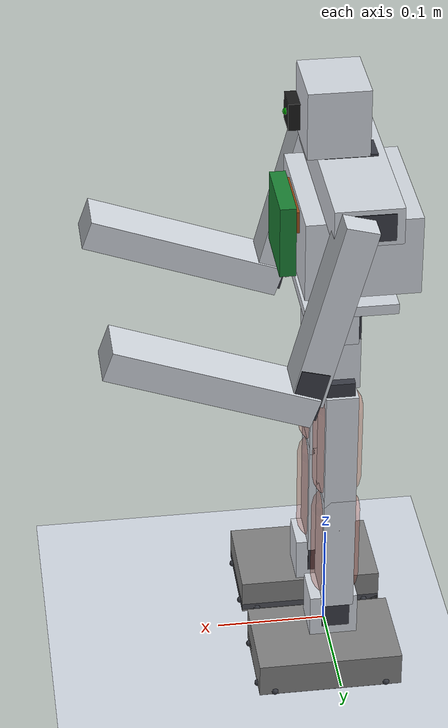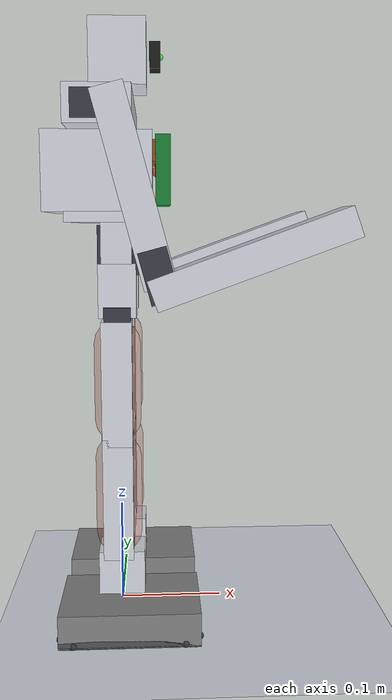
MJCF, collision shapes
<mujoco model="bimo_biped_v6ar">
  <compiler angle="degree" autolimits="true" meshdir=".."/>
  <option timestep="0.002" gravity="0 0 -9.81" integrator="implicitfast"/>

  <visual>
    <global offwidth="900" offheight="1100"/>
    <headlight diffuse="0.7 0.7 0.7" ambient="0.35 0.35 0.35"/>
  </visual>

  <default>
    <joint type="hinge" damping="0.6" armature="0.008" frictionloss="0.02" limited="true"/>
    <position kp="40" forcerange="-3 3"/>
    <geom contype="0" conaffinity="0"/>
    <default class="servo">
      <geom type="box" contype="2" conaffinity="0" group="3" rgba="0.22 0.23 0.27 1"/>
    </default>
    <default class="pad">
      <geom type="sphere" size="0.003" group="3" contype="1" conaffinity="0" mass="0"
            friction="1 0.02 0.001" condim="4" rgba="0.20 0.21 0.24 1"/>
    </default>
    <default class="fallcol">
      <geom contype="2" conaffinity="0" group="3" friction="0.8 0.02 0.001" condim="4"/>
    </default>
    <default class="legcol">
      <geom type="capsule" size="0.0147" contype="0" conaffinity="0" mass="0"
            group="4" rgba="0.85 0.35 0.25 0.30"/>
    </default>
    <default class="cad">
      <geom type="mesh" contype="0" conaffinity="0" mass="0" group="2" rgba="0.82 0.84 0.87 1"/>
    </default>
  </default>

  <asset>
    <mesh name="cad_ankle_link" file="cad/v6/stl/ankle_link.stl" scale="0.001 0.001 0.001"/>
    <mesh name="servo_pitch" file="sim/meshes/v6/servo_pitch.stl" scale="0.001 0.001 0.001"/>
    <mesh name="cad_arm_upper_v6_L" file="cad/v6/stl/arm_upper_v6_L.stl" scale="0.001 0.001 0.001"/>
    <mesh name="servo_elbow_L" file="sim/meshes/v6/servo_elbow_L.stl" scale="0.001 0.001 0.001"/>
    <mesh name="cad_foot_L" file="cad/v6/stl/foot_L.stl" scale="0.001 0.001 0.001"/>
    <mesh name="cad_sole_tpu_L" file="cad/v6/stl/sole_tpu_L.stl" scale="0.001 0.001 0.001"/>
    <mesh name="servo_foot_L" file="sim/meshes/v6/servo_foot_L.stl" scale="0.001 0.001 0.001"/>
    <mesh name="cad_arm_fore_v6_L" file="cad/v6/stl/arm_fore_v6_L.stl" scale="0.001 0.001 0.001"/>
    <mesh name="cad_hip_yoke_v6" file="cad/v6/stl/hip_yoke_v6.stl" scale="0.001 0.001 0.001"/>
    <mesh name="cad_yaw_carrier_v6" file="cad/v6/stl/yaw_carrier_v6.stl" scale="0.001 0.001 0.001"/>
    <mesh name="servo_roll" file="sim/meshes/v6/servo_roll.stl" scale="0.001 0.001 0.001"/>
    <mesh name="cad_leg_link_v6" file="cad/v6/stl/leg_link_v6.stl" scale="0.001 0.001 0.001"/>
    <mesh name="cad_arm_upper_v6_R" file="cad/v6/stl/arm_upper_v6_R.stl" scale="0.001 0.001 0.001"/>
    <mesh name="servo_elbow_R" file="sim/meshes/v6/servo_elbow_R.stl" scale="0.001 0.001 0.001"/>
    <mesh name="cad_foot_R" file="cad/v6/stl/foot_R.stl" scale="0.001 0.001 0.001"/>
    <mesh name="cad_sole_tpu_R" file="cad/v6/stl/sole_tpu_R.stl" scale="0.001 0.001 0.001"/>
    <mesh name="servo_foot_R" file="sim/meshes/v6/servo_foot_R.stl" scale="0.001 0.001 0.001"/>
    <mesh name="cad_arm_fore_v6_R" file="cad/v6/stl/arm_fore_v6_R.stl" scale="0.001 0.001 0.001"/>
    <mesh name="cad_head" file="cad/v6/stl/head.stl" scale="0.001 0.001 0.001"/>
    <mesh name="cad_pelvis_v7" file="cad/v6/stl/pelvis_v7.stl" scale="0.001 0.001 0.001"/>
    <mesh name="cad_yaw_bearing_housing" file="cad/v6/stl/yaw_bearing_housing.stl" scale="0.001 0.001 0.001"/>
    <mesh name="cad_neck_floor" file="cad/v6/stl/neck_floor.stl" scale="0.001 0.001 0.001"/>
    <mesh name="cad_shoulder_girdle_v6" file="cad/v6/stl/shoulder_girdle_v6.stl" scale="0.001 0.001 0.001"/>
    <mesh name="servo_yaw_L" file="sim/meshes/v6/servo_yaw_L.stl" scale="0.001 0.001 0.001"/>
    <mesh name="servo_yaw_R" file="sim/meshes/v6/servo_yaw_R.stl" scale="0.001 0.001 0.001"/>
    <mesh name="servo_neck" file="sim/meshes/v6/servo_neck.stl" scale="0.001 0.001 0.001"/>
    <mesh name="servo_shoulder_L" file="sim/meshes/v6/servo_shoulder_L.stl" scale="0.001 0.001 0.001"/>
    <mesh name="servo_shoulder_R" file="sim/meshes/v6/servo_shoulder_R.stl" scale="0.001 0.001 0.001"/>
    <texture name="grid" type="2d" builtin="checker" rgb1="0.87 0.89 0.92"
             rgb2="0.77 0.80 0.85" width="512" height="512"/>
    <material name="floor_mat" texture="grid" texrepeat="24 24" texuniform="true"/>
  </asset>

  <worldbody>
    <light pos="0.6 0.4 1.5" dir="-0.4 -0.3 -1" directional="true"/>
    <geom name="floor" type="plane" size="3 3 0.1" contype="1" conaffinity="3"
          material="floor_mat" friction="1 0.02 0.001" condim="4"/>

    <!-- torso origin = hip yaw axis height, on the centreline -->
      <body name="torso" pos="0 0 0.39147">
      <freejoint/>
        <inertial pos="-0.0126 -0.0000 0.0492" quat="0.5142 0.4856 0.4854 0.5140" mass="0.9534" diaginertia="1.4053e-03 2.4268e-03 2.8134e-03"/>
        <geom name="torso_cad_pelvis_v7" class="cad" mesh="cad_pelvis_v7" pos="0.00000 0.00000 0.07380" rgba="0.82 0.84 0.87 1"/>
        <geom name="torso_cad_yaw_bearing_housing" class="cad" mesh="cad_yaw_bearing_housing" pos="0.00000 0.00000 0.07380" rgba="0.82 0.84 0.87 1"/>
        <geom name="torso_cad_neck_floor" class="cad" mesh="cad_neck_floor" pos="0.00000 0.00000 0.07380" rgba="0.82 0.84 0.87 1"/>
        <geom name="torso_cad_shoulder_girdle_v6" class="cad" mesh="cad_shoulder_girdle_v6" pos="0.00000 0.00000 0.07380" rgba="0.82 0.84 0.87 1"/>
        <geom name="torso_servo_yaw_L" class="cad" mesh="servo_yaw_L" rgba="0.12 0.12 0.14 1"/>
        <geom name="torso_servo_yaw_R" class="cad" mesh="servo_yaw_R" rgba="0.12 0.12 0.14 1"/>
        <geom name="torso_servo_neck" class="cad" mesh="servo_neck" rgba="0.12 0.12 0.14 1"/>
        <geom name="torso_servo_shoulder_L" class="cad" mesh="servo_shoulder_L" rgba="0.12 0.12 0.14 1"/>
        <geom name="torso_servo_shoulder_R" class="cad" mesh="servo_shoulder_R" rgba="0.12 0.12 0.14 1"/>
      <!-- one-print pelvis: deck + housing walls -->
      <geom type="box" pos="-0.0045 0 -0.00285" size="0.04 0.07749 0.00465" name="torso_deck" class="fallcol" mass="0.087" rgba="0.82 0.84 0.87 1" group="3"/>
      <geom type="box" pos="-0.01644 0 0.0378" size="0.04948 0.06176 0.036" name="torso_housing" class="fallcol" mass="0.087" rgba="0.82 0.84 0.87 0.25" group="3"/>
      <!-- hip YAW servos hang under the housing floor, horn down on the yaw axis -->
      <geom type="box" pos="-0.0125 0.042 0.0189" size="0.02261 0.01236 0.0189" class="servo" mass="0.055"/>
      <geom type="box" pos="-0.0125 -0.042 0.0189" size="0.02261 0.01236 0.0189" class="servo" mass="0.055"/>
      <!-- 3S 2200 mAh class pack, transverse, 105 x 36 x 26 -->
      <geom type="box" pos="-0.012 0 0.0585" size="0.018 0.0525 0.013" mass="0.17" rgba="0.15 0.35 0.75 1" group="3"/>
      <!-- Pi 4B on the aft wall: 85 across (y), 56 tall (z), 20 deep with heatsink -->
      <geom type="box" pos="-0.047 0 0.041" size="0.010 0.0425 0.028" mass="0.066" rgba="0.1 0.5 0.2 1" group="3"/>
      <!-- General Driver on the front wall: 65 x 65, 12 deep -->
      <geom type="box" pos="0.043 0 0.041" size="0.007 0.0325 0.0325" mass="0.03" rgba="0.1 0.5 0.2 1" group="3"/>
      <!-- power: 3S protection / UPS module + 5 V buck, beside the pack -->
      <geom type="box" pos="0.024 0 0.0585" size="0.014 0.030 0.010" mass="0.06" rgba="0.6 0.3 0.1 1" group="3"/>
      <geom type="box" pos="0.0 0 0.064" size="0.02 0.03 0.006" mass="0.03" rgba="0.3 0.3 0.3 0.4" group="3"/>
      <site name="imu" pos="0.036 0 0.041" size="0.004" rgba="1 0 0 0.6"/>
      <!-- neck STS3215, axis Z, horn UP; the head yaws on it -->
      <geom type="box" pos="-0.0125 0 0.0901" size="0.02261 0.01236 0.0189" class="servo" mass="0.055"/>
      <body name="pi_bay" pos="-0.047 0 0.041">
        <geom type="box" size="0.002 0.002 0.002" mass="0.0" rgba="0.8 0.2 0.6 0.0" group="3"/>
      </body>

      <body name="L_hip_yaw" pos="0 0.042 0">
        <joint name="L_hip_yaw" axis="0 0 1" range="-45 45"/>
        <inertial pos="0.0007 -0.0000 -0.0233" quat="0.4786 -0.4786 -0.5205 -0.5205" mass="0.1268" diaginertia="3.9621e-05 5.4798e-05 5.8862e-05"/>
        <geom name="L_hip_yaw_cad_yaw_carrier_v6" class="cad" mesh="cad_yaw_carrier_v6" pos="0.00000 0.00000 0.00000" rgba="0.82 0.84 0.87 1"/>
        <geom name="L_hip_yaw_servo_roll" class="cad" mesh="servo_roll" rgba="0.12 0.12 0.14 1"/>
        <!-- yaw carrier print + the hip ROLL servo riding in it (axis X) -->
        <geom type="box" pos="0 0 -0.02255" size="0.014 0.020 0.02255" mass="0.0175" rgba="0.82 0.84 0.87 1" group="3"/>
        <geom type="box" pos="0.00155 0 -0.03261" size="0.0189 0.01236 0.02261" class="servo" mass="0.055"/>
        <body name="L_hip" pos="0 0 -0.04511">
          <joint name="L_hip_roll" axis="1 0 0" range="-30 45"/>
        <inertial pos="-0.0023 0.0010 -0.0218" quat="0.6536 0.0498 0.1987 -0.7286" mass="0.0254" diaginertia="8.9971e-06 9.1438e-06 9.7387e-06"/>
        <geom name="L_hip_cad_hip_yoke_v6" class="cad" mesh="cad_hip_yoke_v6" pos="0.00000 0.00000 0.00000" rgba="0.82 0.84 0.87 1"/>
          <!-- yoke_roll + yoke_pitch (the hip universal, 50 mm axis offset) -->
          <geom type="box" pos="0 0 -0.025" size="0.0175 0.0125 0.025" mass="0.03" rgba="0.82 0.84 0.87 1" group="3"/>
          <body name="L_thigh" pos="0 0 -0.05">
            <joint name="L_hip_pitch" axis="0 1 0" range="-125 90"/>
        <inertial pos="-0.0013 0.0018 -0.0293" quat="0.6947 -0.0006 0.7193 0.0016" mass="0.0836" diaginertia="1.8850e-05 7.8741e-05 8.7586e-05"/>
        <geom name="L_thigh_cad_leg_link_v6" class="cad" mesh="cad_leg_link_v6" pos="0.00000 0.00000 0.00000" rgba="0.82 0.84 0.87 1"/>
        <geom name="L_thigh_servo_pitch" class="cad" mesh="servo_pitch" rgba="0.12 0.12 0.14 1"/>
            <!-- hip-pitch servo case sits in the thigh, axis at its upper end -->
            <geom type="box" pos="0 0.00155 -0.0125" size="0.01236 0.0189 0.02261" class="servo" mass="0.055"/>
            <geom type="box" pos="-0.00098 0.00153 -0.0615" size="0.01418 0.02193 0.0585" class="fallcol" mass="0.027" rgba="0.82 0.84 0.87 1" group="3"/>
            <geom type="capsule" fromto="-0.00098 0.00153 -0.02493 -0.00098 0.00153 -0.09807" size="0.02193" name="L_col_thigh" class="legcol"/>
            <body name="L_shin" pos="0 0 -0.11">
              <joint name="L_knee" axis="0 -1 0" range="-130 5"/>
        <inertial pos="-0.0013 0.0018 -0.0293" quat="0.6947 -0.0006 0.7193 0.0016" mass="0.0836" diaginertia="1.8850e-05 7.8741e-05 8.7586e-05"/>
        <geom name="L_shin_cad_leg_link_v6" class="cad" mesh="cad_leg_link_v6" pos="0.00000 0.00000 0.00000" rgba="0.82 0.84 0.87 1"/>
        <geom name="L_shin_servo_pitch" class="cad" mesh="servo_pitch" rgba="0.12 0.12 0.14 1"/>
              <geom type="box" pos="0 0.00155 -0.0125" size="0.01236 0.0189 0.02261" class="servo" mass="0.055"/>
              <geom type="box" pos="-0.00098 0.00153 -0.0615" size="0.01418 0.02193 0.0585" name="L_shin_link" class="fallcol" mass="0.027" rgba="0.82 0.84 0.87 1" group="3"/>
              <geom type="capsule" fromto="-0.00098 0.00153 -0.02493 -0.00098 0.00153 -0.09807" size="0.02193" name="L_col_shank" class="legcol"/>

              <body name="L_ankle_blk" pos="0 0 -0.11">
                <joint name="L_ankle" axis="0 1 0" range="-45 45"/>
        <inertial pos="0.0004 0.0013 -0.0171" quat="0.7280 -0.0342 0.6847 -0.0076" mass="0.0686" diaginertia="1.3234e-05 2.4022e-05 2.4869e-05"/>
        <geom name="L_ankle_blk_cad_ankle_link" class="cad" mesh="cad_ankle_link" pos="0.00000 0.00000 0.00000" rgba="0.82 0.84 0.87 1"/>
        <geom name="L_ankle_blk_servo_pitch" class="cad" mesh="servo_pitch" rgba="0.12 0.12 0.14 1"/>
                <!-- ankle-pitch servo case hangs below the axis inside the
                     ankle link (the hip's roll->pitch stack, upside down) -->
                <geom type="box" pos="0 0.00155 -0.0125" size="0.01236 0.0189 0.02261" class="servo" mass="0.055"/>
                <geom type="box" pos="0.00183 0.00093 -0.0355" size="0.02162 0.01882 0.0325" class="fallcol" mass="0.009" rgba="0.82 0.84 0.87 1" group="3"/>
                <geom type="box" pos="0.00183 0.00093 -0.0355" size="0.02162 0.01882 0.0325" name="L_col_ankle" contype="0" conaffinity="0" mass="0" group="4" rgba="0.85 0.35 0.25 0.3"/>
                <body name="L_foot" pos="0 0 -0.058">
                  <joint name="L_ankle_roll" axis="1 0 0" range="-25 25"/>
        <inertial pos="0.0062 0.0162 -0.0087" quat="0.9993 -0.0284 0.0211 0.0116" mass="0.1351" diaginertia="6.5687e-05 1.2329e-04 1.6798e-04"/>
        <geom name="L_foot_cad_foot_L" class="cad" mesh="cad_foot_L" pos="0.00000 0.00000 -0.01636" rgba="0.82 0.84 0.87 1"/>
        <geom name="L_foot_cad_sole_tpu_L" class="cad" mesh="cad_sole_tpu_L" pos="0.00000 0.00000 -0.01636" rgba="0.93 0.93 0.91 1"/>
        <geom name="L_foot_servo_foot_L" class="cad" mesh="servo_foot_L" rgba="0.12 0.12 0.14 1"/>
                  <!-- ankle-ROLL servo lies across the foot, output axis X,
                       case bottom on the sole plate; the ankle link forks
                       onto its horn (front) and idler (rear) -->
                  <geom type="box" pos="0.00155 0.0125 0" size="0.0189 0.02261 0.01236" class="servo" mass="0.055"/>

                  <geom name="L_foot_plate" class="fallcol" type="box" pos="0.01 0.0185 -0.01336" size="0.065 0.042 0.003" mass="0.071" rgba="0.30 0.31 0.34 1" group="3"/>
              <geom name="L_pad_hl" class="pad" pos="-0.055 0.0465 -0.01536"/>
              <geom name="L_pad_hr" class="pad" pos="-0.055 -0.0095 -0.01536"/>
              <geom name="L_pad_hol" class="pad" pos="-0.041 0.0605 -0.01536"/>
              <geom name="L_pad_hor" class="pad" pos="-0.041 -0.0235 -0.01536"/>
              <geom name="L_pad_tol" class="pad" pos="0.061 0.0605 -0.01536"/>
              <geom name="L_pad_tor" class="pad" pos="0.061 -0.0235 -0.01536"/>
              <geom name="L_pad_tl" class="pad" pos="0.075 0.0465 -0.01536"/>
              <geom name="L_pad_tr" class="pad" pos="0.075 -0.0095 -0.01536"/>
                  <!-- reference sole (non-colliding; walker_env reads it) and
                       the full-footprint inter-foot collision proxy -->
                  <geom name="L_sole" type="box" pos="0.01 0.0185 -0.01436" size="0.065 0.042 0.004"
                        contype="0" conaffinity="0" group="3" mass="0" friction="1 0.02 0.001" condim="4"/>
                  <geom type="box" pos="0.01 0.0185 -0.00236" size="0.065 0.042 0.016" name="L_col_foot"
                        contype="0" conaffinity="0" group="3" mass="0" friction="1 0.02 0.001" condim="4"/>
                </body>
              </body>
            </body>
          </body>
        </body>
      </body>

      <body name="R_hip_yaw" pos="0 -0.042 0">
        <joint name="R_hip_yaw" axis="0 0 1" range="-45 45"/>
        <inertial pos="0.0007 -0.0000 -0.0233" quat="0.4786 -0.4786 -0.5205 -0.5205" mass="0.1268" diaginertia="3.9621e-05 5.4798e-05 5.8862e-05"/>
        <geom name="R_hip_yaw_cad_yaw_carrier_v6" class="cad" mesh="cad_yaw_carrier_v6" pos="0.00000 0.00000 0.00000" rgba="0.82 0.84 0.87 1"/>
        <geom name="R_hip_yaw_servo_roll" class="cad" mesh="servo_roll" rgba="0.12 0.12 0.14 1"/>
        <!-- yaw carrier print + the hip ROLL servo riding in it (axis X) -->
        <geom type="box" pos="0 0 -0.02255" size="0.014 0.020 0.02255" mass="0.0175" rgba="0.82 0.84 0.87 1" group="3"/>
        <geom type="box" pos="0.00155 0 -0.03261" size="0.0189 0.01236 0.02261" class="servo" mass="0.055"/>
        <body name="R_hip" pos="0 0 -0.04511">
          <joint name="R_hip_roll" axis="1 0 0" range="-45 30"/>
        <inertial pos="-0.0023 0.0010 -0.0218" quat="0.6536 0.0498 0.1987 -0.7286" mass="0.0254" diaginertia="8.9971e-06 9.1438e-06 9.7387e-06"/>
        <geom name="R_hip_cad_hip_yoke_v6" class="cad" mesh="cad_hip_yoke_v6" pos="0.00000 0.00000 0.00000" rgba="0.82 0.84 0.87 1"/>
          <!-- yoke_roll + yoke_pitch (the hip universal, 50 mm axis offset) -->
          <geom type="box" pos="0 0 -0.025" size="0.0175 0.0125 0.025" mass="0.03" rgba="0.82 0.84 0.87 1" group="3"/>
          <body name="R_thigh" pos="0 0 -0.05">
            <joint name="R_hip_pitch" axis="0 1 0" range="-125 90"/>
        <inertial pos="-0.0013 0.0018 -0.0293" quat="0.6947 -0.0006 0.7193 0.0016" mass="0.0836" diaginertia="1.8850e-05 7.8741e-05 8.7586e-05"/>
        <geom name="R_thigh_cad_leg_link_v6" class="cad" mesh="cad_leg_link_v6" pos="0.00000 0.00000 0.00000" rgba="0.82 0.84 0.87 1"/>
        <geom name="R_thigh_servo_pitch" class="cad" mesh="servo_pitch" rgba="0.12 0.12 0.14 1"/>
            <!-- hip-pitch servo case sits in the thigh, axis at its upper end -->
            <geom type="box" pos="0 0.00155 -0.0125" size="0.01236 0.0189 0.02261" class="servo" mass="0.055"/>
            <geom type="box" pos="-0.00098 0.00153 -0.0615" size="0.01418 0.02193 0.0585" class="fallcol" mass="0.027" rgba="0.82 0.84 0.87 1" group="3"/>
            <geom type="capsule" fromto="-0.00098 0.00153 -0.02493 -0.00098 0.00153 -0.09807" size="0.02193" name="R_col_thigh" class="legcol"/>
            <body name="R_shin" pos="0 0 -0.11">
              <joint name="R_knee" axis="0 -1 0" range="-130 5"/>
        <inertial pos="-0.0013 0.0018 -0.0293" quat="0.6947 -0.0006 0.7193 0.0016" mass="0.0836" diaginertia="1.8850e-05 7.8741e-05 8.7586e-05"/>
        <geom name="R_shin_cad_leg_link_v6" class="cad" mesh="cad_leg_link_v6" pos="0.00000 0.00000 0.00000" rgba="0.82 0.84 0.87 1"/>
        <geom name="R_shin_servo_pitch" class="cad" mesh="servo_pitch" rgba="0.12 0.12 0.14 1"/>
              <geom type="box" pos="0 0.00155 -0.0125" size="0.01236 0.0189 0.02261" class="servo" mass="0.055"/>
              <geom type="box" pos="-0.00098 0.00153 -0.0615" size="0.01418 0.02193 0.0585" name="R_shin_link" class="fallcol" mass="0.027" rgba="0.82 0.84 0.87 1" group="3"/>
              <geom type="capsule" fromto="-0.00098 0.00153 -0.02493 -0.00098 0.00153 -0.09807" size="0.02193" name="R_col_shank" class="legcol"/>

              <body name="R_ankle_blk" pos="0 0 -0.11">
                <joint name="R_ankle" axis="0 1 0" range="-45 45"/>
        <inertial pos="0.0004 0.0013 -0.0171" quat="0.7280 -0.0342 0.6847 -0.0076" mass="0.0686" diaginertia="1.3234e-05 2.4022e-05 2.4869e-05"/>
        <geom name="R_ankle_blk_cad_ankle_link" class="cad" mesh="cad_ankle_link" pos="0.00000 0.00000 0.00000" rgba="0.82 0.84 0.87 1"/>
        <geom name="R_ankle_blk_servo_pitch" class="cad" mesh="servo_pitch" rgba="0.12 0.12 0.14 1"/>
                <!-- ankle-pitch servo case hangs below the axis inside the
                     ankle link (the hip's roll->pitch stack, upside down) -->
                <geom type="box" pos="0 0.00155 -0.0125" size="0.01236 0.0189 0.02261" class="servo" mass="0.055"/>
                <geom type="box" pos="0.00183 0.00093 -0.0355" size="0.02162 0.01882 0.0325" class="fallcol" mass="0.009" rgba="0.82 0.84 0.87 1" group="3"/>
                <geom type="box" pos="0.00183 0.00093 -0.0355" size="0.02162 0.01882 0.0325" name="R_col_ankle" contype="0" conaffinity="0" mass="0" group="4" rgba="0.85 0.35 0.25 0.3"/>
                <body name="R_foot" pos="0 0 -0.058">
                  <joint name="R_ankle_roll" axis="1 0 0" range="-25 25"/>
        <inertial pos="0.0062 -0.0162 -0.0087" quat="0.9993 0.0284 0.0211 -0.0116" mass="0.1351" diaginertia="6.5687e-05 1.2329e-04 1.6798e-04"/>
        <geom name="R_foot_cad_foot_R" class="cad" mesh="cad_foot_R" pos="0.00000 0.00000 -0.01636" rgba="0.82 0.84 0.87 1"/>
        <geom name="R_foot_cad_sole_tpu_R" class="cad" mesh="cad_sole_tpu_R" pos="0.00000 0.00000 -0.01636" rgba="0.93 0.93 0.91 1"/>
        <geom name="R_foot_servo_foot_R" class="cad" mesh="servo_foot_R" rgba="0.12 0.12 0.14 1"/>
                  <!-- ankle-ROLL servo lies across the foot, output axis X,
                       case bottom on the sole plate; the ankle link forks
                       onto its horn (front) and idler (rear) -->
                  <geom type="box" pos="0.00155 -0.0125 0" size="0.0189 0.02261 0.01236" class="servo" mass="0.055"/>

                  <geom name="R_foot_plate" class="fallcol" type="box" pos="0.01 -0.0185 -0.01336" size="0.065 0.042 0.003" mass="0.071" rgba="0.30 0.31 0.34 1" group="3"/>
              <geom name="R_pad_hl" class="pad" pos="-0.055 0.0095 -0.01536"/>
              <geom name="R_pad_hr" class="pad" pos="-0.055 -0.0465 -0.01536"/>
              <geom name="R_pad_hol" class="pad" pos="-0.041 0.0235 -0.01536"/>
              <geom name="R_pad_hor" class="pad" pos="-0.041 -0.0605 -0.01536"/>
              <geom name="R_pad_tol" class="pad" pos="0.061 0.0235 -0.01536"/>
              <geom name="R_pad_tor" class="pad" pos="0.061 -0.0605 -0.01536"/>
              <geom name="R_pad_tl" class="pad" pos="0.075 0.0095 -0.01536"/>
              <geom name="R_pad_tr" class="pad" pos="0.075 -0.0465 -0.01536"/>
                  <!-- reference sole (non-colliding; walker_env reads it) and
                       the full-footprint inter-foot collision proxy -->
                  <geom name="R_sole" type="box" pos="0.01 -0.0185 -0.01436" size="0.065 0.042 0.004"
                        contype="0" conaffinity="0" group="3" mass="0" friction="1 0.02 0.001" condim="4"/>
                  <geom type="box" pos="0.01 -0.0185 -0.00236" size="0.065 0.042 0.016" name="R_col_foot"
                        contype="0" conaffinity="0" group="3" mass="0" friction="1 0.02 0.001" condim="4"/>
                </body>
              </body>
            </body>
          </body>
        </body>
      </body>
      <body name="head" pos="0 0 0.1177">
        <joint name="neck_yaw" axis="0 0 1" range="-90 90"/>
        <inertial pos="0.0053 0.0000 0.0266" quat="0.6667 0.2355 -0.2355 -0.6667" mass="0.0387" diaginertia="2.5517e-05 2.6068e-05 3.0565e-05"/>
        <geom name="head_cad_head" class="cad" mesh="cad_head" pos="0.00000 0.00000 0.00000" rgba="0.82 0.84 0.87 1"/>
        <geom type="box" pos="0.0015 0 0.03" size="0.0265 0.031 0.03" name="head_shell" class="fallcol" mass="0.039" rgba="0.82 0.84 0.87 1" group="3"/>
        <geom type="box" pos="0.036 0 0.03" size="0.005 0.012 0.012" mass="0.003" rgba="0.1 0.1 0.1 1" group="3"/>
        <site name="camera" pos="0.041 0 0.03" size="0.003" rgba="0 1 0 0.6"/>
      </body>
      <geom type="box" pos="-0.013 0 0.09035" size="0.029 0.10015 0.01655" name="girdle" class="fallcol" mass="0.084" rgba="0.82 0.84 0.87 1" group="3"/>
      <geom type="box" pos="-0.0125 0.08195 0.09016" size="0.02261 0.0189 0.01236" class="servo" mass="0.055"/>
      <body name="L_arm" pos="0 0.10335 0.09016" euler="0 -15 0">
        <joint name="L_shoulder" axis="0 1 0" range="-90 200" ref="-15"/>   <!-- 0 = hanging down, 90 = straight back, 180 = up along the torso -->
        <inertial pos="-0.0014 0.0023 -0.1209" quat="0.7146 -0.0167 0.6993 0.0030" mass="0.0828" diaginertia="1.2078e-05 1.9043e-04 1.9270e-04"/>
        <geom name="L_arm_cad_arm_upper_v6_L" class="cad" mesh="cad_arm_upper_v6_L" pos="0.00000 0.00000 0.00000" rgba="0.82 0.84 0.87 1"/>
        <geom name="L_arm_servo_elbow_L" class="cad" mesh="servo_elbow_L" rgba="0.12 0.12 0.14 1"/>
        <geom type="box" pos="0 0.00155 -0.1475" size="0.01236 0.0189 0.02261" class="servo" mass="0.055"/>
        <geom type="box" pos="-0.00088 0.00093 -0.0725" size="0.01428 0.01882 0.0845" class="fallcol" mass="0.02" rgba="0.82 0.84 0.87 1"/>
        <body name="L_forearm" pos="0 0 -0.16" euler="0 -95 0">
          <joint name="L_elbow" axis="0 1 0" range="-150 150" ref="-95"/>
        <inertial pos="-0.0038 0.0004 -0.0847" quat="0.7095 -0.0027 0.7047 -0.0034" mass="0.0415" diaginertia="7.1437e-06 1.3153e-04 1.3343e-04"/>
        <geom name="L_forearm_cad_arm_fore_v6_L" class="cad" mesh="cad_arm_fore_v6_L" pos="0.00000 0.00000 0.00000" rgba="0.82 0.84 0.87 1"/>

          <geom type="box" pos="-0.00158 0.00153 -0.081" size="0.01358 0.02193 0.091" class="fallcol" mass="0.012" rgba="0.82 0.84 0.87 1"/>
          <geom class="fallcol" type="sphere" pos="0 0 -0.16" size="0.012" mass="0.005" friction="1.0 0.02 0.001" rgba="0.2 0.2 0.2 1"/>
        </body>
      </body>
      <geom type="box" pos="-0.0125 -0.08195 0.09016" size="0.02261 0.0189 0.01236" class="servo" mass="0.055"/>
      <body name="R_arm" pos="0 -0.10335 0.09016" euler="0 -15 0">
        <joint name="R_shoulder" axis="0 1 0" range="-90 200" ref="-15"/>   <!-- 0 = hanging down, 90 = straight back, 180 = up along the torso -->
        <inertial pos="-0.0014 -0.0023 -0.1209" quat="0.7146 0.0167 0.6993 -0.0030" mass="0.0828" diaginertia="1.2078e-05 1.9043e-04 1.9270e-04"/>
        <geom name="R_arm_cad_arm_upper_v6_R" class="cad" mesh="cad_arm_upper_v6_R" pos="0.00000 0.00000 0.00000" rgba="0.82 0.84 0.87 1"/>
        <geom name="R_arm_servo_elbow_R" class="cad" mesh="servo_elbow_R" rgba="0.12 0.12 0.14 1"/>
        <geom type="box" pos="0 -0.00155 -0.1475" size="0.01236 0.0189 0.02261" class="servo" mass="0.055"/>
        <geom type="box" pos="-0.00088 -0.00093 -0.0725" size="0.01428 0.01882 0.0845" class="fallcol" mass="0.02" rgba="0.82 0.84 0.87 1"/>
        <body name="R_forearm" pos="0 0 -0.16" euler="0 -95 0">
          <joint name="R_elbow" axis="0 1 0" range="-150 150" ref="-95"/>
        <inertial pos="-0.0038 -0.0004 -0.0847" quat="0.7095 0.0027 0.7047 0.0034" mass="0.0415" diaginertia="7.1437e-06 1.3153e-04 1.3343e-04"/>
        <geom name="R_forearm_cad_arm_fore_v6_R" class="cad" mesh="cad_arm_fore_v6_R" pos="0.00000 0.00000 0.00000" rgba="0.82 0.84 0.87 1"/>

          <geom type="box" pos="-0.00158 -0.00153 -0.081" size="0.01358 0.02193 0.091" class="fallcol" mass="0.012" rgba="0.82 0.84 0.87 1"/>
          <geom class="fallcol" type="sphere" pos="0 0 -0.16" size="0.012" mass="0.005" friction="1.0 0.02 0.001" rgba="0.2 0.2 0.2 1"/>
        </body>
      </body>
    </body>
  </worldbody>

  <actuator>
    <position name="L_hip_yaw" joint="L_hip_yaw" ctrlrange="-0.7853981634 0.7853981634"/>
    <position name="L_hip_roll" joint="L_hip_roll" ctrlrange="-0.5235987756 0.7853981634"/>
    <position name="L_hip_pitch" joint="L_hip_pitch" ctrlrange="-2.1816615650 1.5707963268"/>
    <position name="L_knee" joint="L_knee" ctrlrange="-2.2689280276 0.0872664626"/>
    <position name="L_ankle" joint="L_ankle" ctrlrange="-0.7853981634 0.7853981634"/>
    <position name="L_ankle_roll" joint="L_ankle_roll" ctrlrange="-0.4363323130 0.4363323130"/>
    <position name="R_hip_yaw" joint="R_hip_yaw" ctrlrange="-0.7853981634 0.7853981634"/>
    <position name="R_hip_roll" joint="R_hip_roll" ctrlrange="-0.7853981634 0.5235987756"/>
    <position name="R_hip_pitch" joint="R_hip_pitch" ctrlrange="-2.1816615650 1.5707963268"/>
    <position name="R_knee" joint="R_knee" ctrlrange="-2.2689280276 0.0872664626"/>
    <position name="R_ankle" joint="R_ankle" ctrlrange="-0.7853981634 0.7853981634"/>
    <position name="R_ankle_roll" joint="R_ankle_roll" ctrlrange="-0.4363323130 0.4363323130"/>
    <position name="neck_yaw" joint="neck_yaw" ctrlrange="-1.5707963268 1.5707963268"/>  <!-- head yaw -->
    <position name="L_shoulder" joint="L_shoulder" ctrlrange="-1.5707963268 3.4906585040"/>
    <position name="L_elbow" joint="L_elbow" ctrlrange="-2.6179938780 2.6179938780"/>
    <position name="R_shoulder" joint="R_shoulder" ctrlrange="-1.5707963268 3.4906585040"/>
    <position name="R_elbow" joint="R_elbow" ctrlrange="-2.6179938780 2.6179938780"/>
  </actuator>

  <contact>
    <pair geom1="L_col_thigh" geom2="R_col_thigh"/>
    <pair geom1="L_col_thigh" geom2="R_col_shank"/>
    <pair geom1="L_col_thigh" geom2="R_col_ankle"/>
    <pair geom1="L_col_thigh" geom2="R_col_foot"/>
    <pair geom1="L_col_shank" geom2="R_col_thigh"/>
    <pair geom1="L_col_shank" geom2="R_col_shank"/>
    <pair geom1="L_col_shank" geom2="R_col_ankle"/>
    <pair geom1="L_col_shank" geom2="R_col_foot"/>
    <pair geom1="L_col_ankle" geom2="R_col_thigh"/>
    <pair geom1="L_col_ankle" geom2="R_col_shank"/>
    <pair geom1="L_col_ankle" geom2="R_col_ankle"/>
    <pair geom1="L_col_ankle" geom2="R_col_foot"/>
    <pair geom1="L_col_foot" geom2="R_col_thigh"/>
    <pair geom1="L_col_foot" geom2="R_col_shank"/>
    <pair geom1="L_col_foot" geom2="R_col_ankle"/>
    <pair geom1="L_col_foot" geom2="R_col_foot"/>
    <pair geom1="L_sole" geom2="R_sole"/>
  </contact>

  <sensor>
    <framezaxis objtype="site" objname="imu" name="torso_up"/>
    <framepos   objtype="site" objname="imu" name="torso_pos"/>
  </sensor>
</mujoco>
